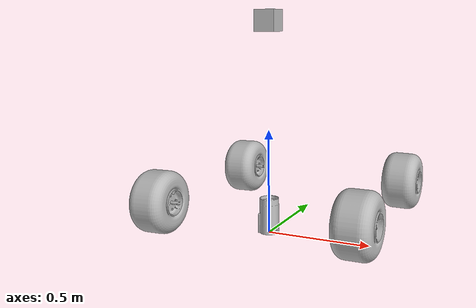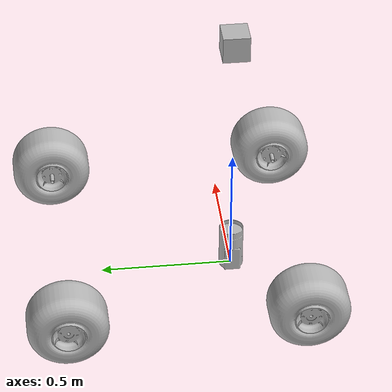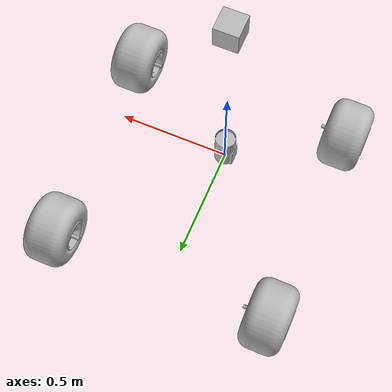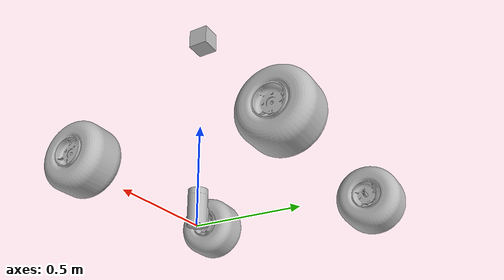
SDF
<sdf version='1.7'>
  <model name='r20_description'>
    <link name='base_link'>
      <inertial>
        <pose>0.003549 0.32033 -0.16842 0 -0 0</pose>
        <mass>12.438</mass>
        <inertia>
          <ixx>2.3693</ixx>
          <ixy>0.088648</ixy>
          <ixz>-0.03872</ixz>
          <iyy>3.2867</iyy>
          <iyz>-0.031602</iyz>
          <izz>2.1637</izz>
        </inertia>
      </inertial>
      <collision name='base_link_collision'>
        <pose>0 0 0 0 -0 0</pose>
        <geometry>
          <mesh>
            <scale>1 1 1</scale>
            <uri>model://meshes/base_link.STL</uri>
          </mesh>
        </geometry>
      </collision>
      <collision name='base_link_fixed_joint_lump__imu_link_collision_1'>
        <pose>0 0 1.01 0 -0 0</pose>
        <geometry>
          <box>
            <size>0.1 0.1 0.1</size>
          </box>
        </geometry>
        <surface>
          <contact>
            <ode/>
          </contact>
          <friction>
            <ode/>
          </friction>
        </surface>
      </collision>
      <visual name='base_link_visual'>
        <pose>0 0 0 0 -0 0</pose>
        <geometry>
          <mesh>
            <scale>1 1 1</scale>
            <uri>model://meshes/base_link.STL</uri>
          </mesh>
        </geometry>
      </visual>
      <visual name='base_link_fixed_joint_lump__imu_link_visual_1'>
        <pose>0 0 1.01 0 -0 0</pose>
        <geometry>
          <box>
            <size>0.1 0.1 0.1</size>
          </box>
        </geometry>
      </visual>
      <sensor name='imu_sensor' type='imu'>
        <plugin name='imu_plugin' filename='libgazebo_ros_imu_sensor.so'>
          <ros>
            <namespace>/demo</namespace>
            <remapping>~/out:=imu</remapping>
          </ros>
          <initial_orientation_as_reference>0</initial_orientation_as_reference>
        </plugin>
        <always_on>1</always_on>
        <update_rate>100</update_rate>
        <visualize>1</visualize>
        <imu>
          <angular_velocity>
            <x>
              <noise type='gaussian'>
                <mean>0</mean>
                <stddev>0.0002</stddev>
                <bias_mean>7.5e-06</bias_mean>
                <bias_stddev>8e-07</bias_stddev>
              </noise>
            </x>
            <y>
              <noise type='gaussian'>
                <mean>0</mean>
                <stddev>0.0002</stddev>
                <bias_mean>7.5e-06</bias_mean>
                <bias_stddev>8e-07</bias_stddev>
              </noise>
            </y>
            <z>
              <noise type='gaussian'>
                <mean>0</mean>
                <stddev>0.0002</stddev>
                <bias_mean>7.5e-06</bias_mean>
                <bias_stddev>8e-07</bias_stddev>
              </noise>
            </z>
          </angular_velocity>
          <linear_acceleration>
            <x>
              <noise type='gaussian'>
                <mean>0</mean>
                <stddev>0.017</stddev>
                <bias_mean>0.1</bias_mean>
                <bias_stddev>0.001</bias_stddev>
              </noise>
            </x>
            <y>
              <noise type='gaussian'>
                <mean>0</mean>
                <stddev>0.017</stddev>
                <bias_mean>0.1</bias_mean>
                <bias_stddev>0.001</bias_stddev>
              </noise>
            </y>
            <z>
              <noise type='gaussian'>
                <mean>0</mean>
                <stddev>0.017</stddev>
                <bias_mean>0.1</bias_mean>
                <bias_stddev>0.001</bias_stddev>
              </noise>
            </z>
          </linear_acceleration>
        </imu>
        <pose>0 0 1.01 0 -0 0</pose>
      </sensor>
    </link>
    <joint name='wheel_front_left_joint' type='revolute'>
      <pose relative_to='base_link'>0.39763 -0.22026 0.16991 1.5614 -0.43857 -1.5845</pose>
      <parent>base_link</parent>
      <child>wheel_front_left_link</child>
      <axis>
        <xyz>0.015366 -0.020671 -0.99967</xyz>
        <limit>
          <lower>-1e+16</lower>
          <upper>1e+16</upper>
        </limit>
        <dynamics>
          <spring_reference>0</spring_reference>
          <spring_stiffness>0</spring_stiffness>
        </dynamics>
      </axis>
    </joint>
    <link name='wheel_front_left_link'>
      <pose relative_to='wheel_front_left_joint'>0 0 0 0 -0 0</pose>
      <inertial>
        <pose>-0.283108 0.295175 0.402138 0 -0 0</pose>
        <mass>12.4383</mass>
        <inertia>
          <ixx>2.34185</ixx>
          <ixy>0.410354</ixy>
          <ixz>0.00396983</ixz>
          <iyy>3.11141</iyy>
          <iyz>-0.0905414</iyz>
          <izz>2.36648</izz>
        </inertia>
      </inertial>
      <collision name='wheel_front_left_link_collision'>
        <pose>0 0 0 0 -0 0</pose>
        <geometry>
          <mesh>
            <scale>1 1 1</scale>
            <uri>model://meshes/wheel_front_left_link.STL</uri>
          </mesh>
        </geometry>
      </collision>
      <visual name='wheel_front_left_link_visual'>
        <pose>0 0 0 0 -0 0</pose>
        <geometry>
          <mesh>
            <scale>1 1 1</scale>
            <uri>model://meshes/wheel_front_left_link.STL</uri>
          </mesh>
        </geometry>
      </visual>
    </link>
    <joint name='wheel_front_right_joint' type='revolute'>
      <pose relative_to='base_link'>-0.35239 -0.22411 0.16152 1.5314 -0.000596 1.5607</pose>
      <parent>base_link</parent>
      <child>wheel_front_right_link</child>
      <axis>
        <xyz>0.015366 -0.020671 0.99967</xyz>
        <limit>
          <lower>-1e+16</lower>
          <upper>1e+16</upper>
        </limit>
        <dynamics>
          <spring_reference>0</spring_reference>
          <spring_stiffness>0</spring_stiffness>
        </dynamics>
      </axis>
    </joint>
    <link name='wheel_front_right_link'>
      <pose relative_to='wheel_front_right_joint'>0 0 0 0 -0 0</pose>
      <inertial>
        <pose>0.396209 0.144572 0.357927 0 -0 0</pose>
        <mass>12.4383</mass>
        <inertia>
          <ixx>2.16451</ixx>
          <ixy>0.0315309</ixy>
          <ixz>0.0421219</ixz>
          <iyy>3.27832</iyy>
          <iyz>0.124187</iyz>
          <izz>2.37692</izz>
        </inertia>
      </inertial>
      <collision name='wheel_front_right_link_collision'>
        <pose>0 0 0 0 -0 0</pose>
        <geometry>
          <mesh>
            <scale>1 1 1</scale>
            <uri>model://meshes/wheel_front_right_link.STL</uri>
          </mesh>
        </geometry>
      </collision>
      <visual name='wheel_front_right_link_visual'>
        <pose>0 0 0 0 -0 0</pose>
        <geometry>
          <mesh>
            <scale>1 1 1</scale>
            <uri>model://meshes/wheel_front_right_link.STL</uri>
          </mesh>
        </geometry>
      </visual>
    </link>
    <joint name='wheel_rear_left_joint' type='revolute'>
      <pose relative_to='base_link'>0.37759 0.66092 0.15221 1.5398 -0.000419 -1.5818</pose>
      <parent>base_link</parent>
      <child>wheel_rear_left_link</child>
      <axis>
        <xyz>0.015366 -0.020671 -0.99967</xyz>
        <limit>
          <lower>-1e+16</lower>
          <upper>1e+16</upper>
        </limit>
        <dynamics>
          <spring_reference>0</spring_reference>
          <spring_stiffness>0</spring_stiffness>
        </dynamics>
      </axis>
    </joint>
    <link name='wheel_rear_left_link'>
      <pose relative_to='wheel_rear_left_joint'>0 0 0 0 -0 0</pose>
      <inertial>
        <pose>0.49666 0.156409 0.37363 0 -0 0</pose>
        <mass>12.4383</mass>
        <inertia>
          <ixx>2.16451</ixx>
          <ixy>-0.0333575</ixy>
          <ixz>0.0399219</ixz>
          <iyy>3.29136</iyy>
          <iyz>-0.0597099</iyz>
          <izz>2.36388</izz>
        </inertia>
      </inertial>
      <collision name='wheel_rear_left_link_collision'>
        <pose>0 0 0 0 -0 0</pose>
        <geometry>
          <mesh>
            <scale>1 1 1</scale>
            <uri>model://meshes/wheel_rear_left_link.STL</uri>
          </mesh>
        </geometry>
      </collision>
      <visual name='wheel_rear_left_link_visual'>
        <pose>0 0 0 0 -0 0</pose>
        <geometry>
          <mesh>
            <scale>1 1 1</scale>
            <uri>model://meshes/wheel_rear_left_link.STL</uri>
          </mesh>
        </geometry>
      </visual>
    </link>
    <joint name='wheel_rear_right_joint' type='revolute'>
      <pose relative_to='base_link'>-0.34598 0.66096 0.15106 -1.5381 -1.4198 -1.6158</pose>
      <parent>base_link</parent>
      <child>wheel_rear_right_link</child>
      <axis>
        <xyz>0.015366 -0.020671 0.99967</xyz>
        <limit>
          <lower>-1e+16</lower>
          <upper>1e+16</upper>
        </limit>
        <dynamics>
          <spring_reference>0</spring_reference>
          <spring_stiffness>0</spring_stiffness>
        </dynamics>
      </axis>
    </joint>
    <link name='wheel_rear_right_link'>
      <pose relative_to='wheel_rear_right_joint'>0 0 0 0 -0 0</pose>
      <inertial>
        <pose>0.238974 0.457345 0.356572 0 -0 0</pose>
        <mass>12.4383</mass>
        <inertia>
          <ixx>3.25085</ixx>
          <ixy>-0.197666</ixy>
          <ixz>0.0854685</ixz>
          <iyy>2.19967</iyy>
          <iyz>-0.0549483</iyz>
          <izz>2.36922</izz>
        </inertia>
      </inertial>
      <collision name='wheel_rear_right_link_collision'>
        <pose>0 0 0 0 -0 0</pose>
        <geometry>
          <mesh>
            <scale>1 1 1</scale>
            <uri>model://meshes/wheel_rear_right_link.STL</uri>
          </mesh>
        </geometry>
      </collision>
      <visual name='wheel_rear_right_link_visual'>
        <pose>0 0 0 0 -0 0</pose>
        <geometry>
          <mesh>
            <scale>1 1 1</scale>
            <uri>model://meshes/wheel_rear_right_link.STL</uri>
          </mesh>
        </geometry>
      </visual>
    </link>
    <static>0</static>
    <plugin name='diff_drive' filename='libgazebo_ros_diff_drive.so'>
      <ros>
        <namespace>/demo</namespace>
      </ros>
      <left_joint>wheel_rear_left_joint</left_joint>
      <right_joint>wheel_rear_right_joint</right_joint>
      <wheel_separation>2.4</wheel_separation>
      <wheel_diameter>0.2</wheel_diameter>
      <max_wheel_torque>20</max_wheel_torque>
      <max_wheel_acceleration>1.0</max_wheel_acceleration>
      <publish_odom>1</publish_odom>
      <publish_odom_tf>0</publish_odom_tf>
      <publish_wheel_tf>1</publish_wheel_tf>
      <odometry_frame>odom</odometry_frame>
      <robot_base_frame>base_link</robot_base_frame>
    </plugin>
  </model>
</sdf>
